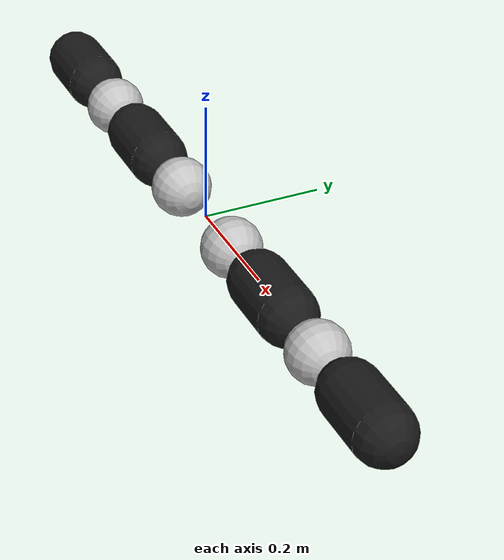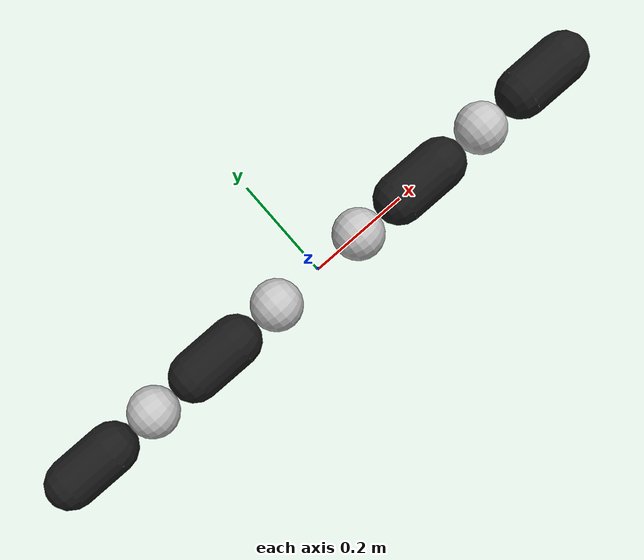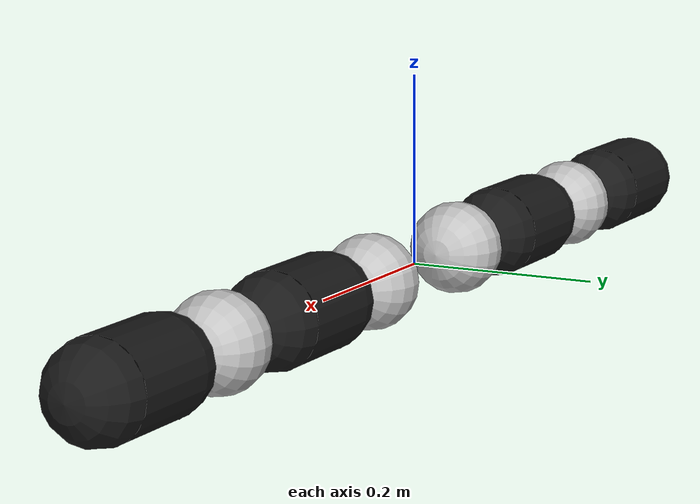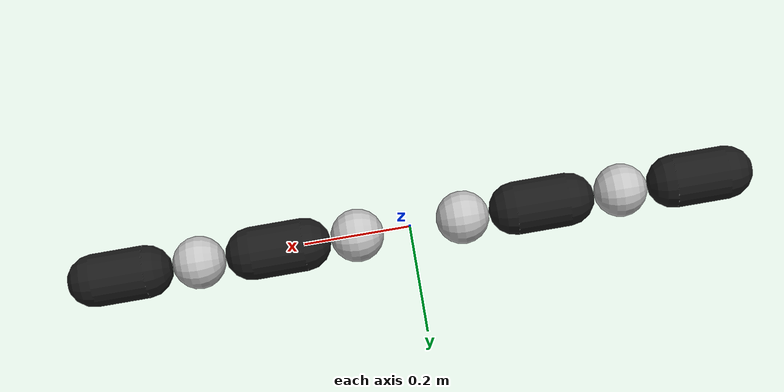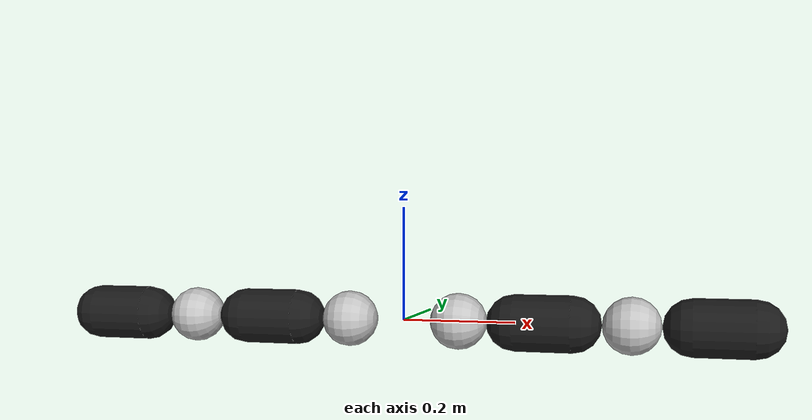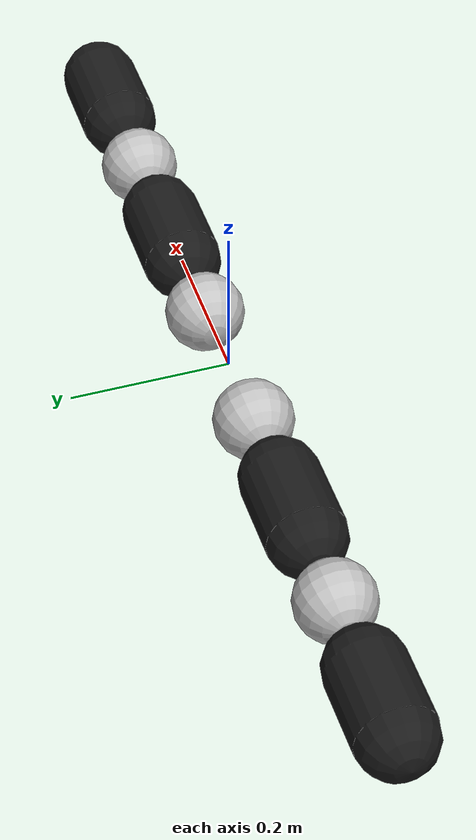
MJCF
<mujoco model="planar_hand">
<!-- Copyright (c) 2023 Boston Dynamics AI Institute LLC. All rights reserved. -->
  <compiler angle="radian" autolimits="true"/>

  <option gravity="0 0 -9.81" timestep="0.01" />

  <asset>
    <material name="object" rgba=".6 0.9 1 1"/>
    <material name="grey" rgba="0.75 .75 .75 1"/>
    <material name="black" rgba="0.1 .1 .1 1"/>
  </asset>

  <default>
    <material specular="0.5" shininess="0.95"/>
    <default class="finger">
      <joint axis="0 1 0" damping="2"/>
      <position kp="15" forcerange="-1000 1000"/>
      <default class="left_shoulder">
        <joint range="-1.57 0"/>
        <position ctrlrange="-1.57 0"/>
      </default>
      <default class="right_shoulder">
        <joint range="0 1.57"/>
        <position ctrlrange="0 1.57"/>
      </default>
      <default class="left_elbow">
        <joint range="-2.4 0"/>
        <position ctrlrange="-2.4 0"/>
      </default>
      <default class="right_elbow">
        <joint range="0 2.4"/>
        <position ctrlrange="0 2.4"/>
      </default>
    </default>
  </default>

  <worldbody>
    <body name="robot_base" pos="0.0 0.0 0.0">
      <geom mass="1.0" pos="0.1 0.0 0.0" quat="0.5 0 0.5 0" size="0.05" type="sphere" material="grey"/>
      <geom mass="1.0" pos="-0.1 0.0 0.0" quat="0.5 0 0.5 0" size="0.05" type="sphere" material="grey"/>
      <body name="body_left_shoulder" pos="0.10 0 0">
        <geom mass="0.5" pos="0.15 0 0" quat="0.5 0 0.5 0" size="0.05 0.05" type="capsule" material="black"/>
        <site pos="0.15 0 0" name="site_left_shoulder"/>
        <geom mass="0.5" pos="0.30 0 0" quat="0.5 0 0.5 0" size="0.05" type="sphere" material="grey"/>
        <joint name="joint_left_shoulder" class="left_shoulder"/>
        <body name="body_left_elbow" pos="0.30 0 0">
          <geom mass="1.0" pos="0.15 0 0" quat="0.5 0 0.5 0" size="0.05 0.05" type="capsule" material="black"/>
          <site pos="0.15 0 0" name="site_left_elbow"/>
          <joint name="joint_left_elbow" class="left_elbow"/>
        </body>
      </body>
      <body name="body_right_shoulder" pos="-0.10 0 0">
        <geom mass="0.5" pos="-0.15 0 0" quat="0.5 0 0.5 0" size="0.05 0.05" type="capsule" material="black"/>
        <site pos="-0.15 0 0" name="site_right_shoulder"/>
        <geom mass="0.5" pos="-0.30 0 0" quat="0.5 0 0.5 0" size="0.05" type="sphere" material="grey"/>
        <joint name="joint_right_shoulder" class="right_shoulder"/>
        <body name="body_right_elbow" pos="-0.30 0 0">
          <geom mass="1.0" pos="-0.15 0 0" quat="0.5 0 0.5 0" size="0.05 0.05" type="capsule" material="black"/>
          <site pos="-0.15 0 0" name="site_right_elbow"/>
          <joint name="joint_right_elbow" class="right_elbow"/>
        </body>
      </body>
    </body>
  </worldbody>

  <keyframe>
    <!-- [object_xytheta arm_joint_angles] -->
    <key name="home" qpos="0 1 0  0 0 0 0" />
  </keyframe>

  <sensor>
    <framepos name="sensor_left_thigh" objtype="site" objname="site_left_shoulder" reftype="site" refname="site_box"/>
    <framepos name="sensor_left_calf" objtype="site" objname="site_left_elbow" reftype="site" refname="site_box"/>
    <framepos name="sensor_right_thigh" objtype="site" objname="site_right_shoulder" reftype="site" refname="site_box"/>
    <framepos name="sensor_right_calf" objtype="site" objname="site_right_elbow" reftype="site" refname="site_box"/>
  </sensor>

  <actuator>
    <position name="actuator_left_thigh" joint="joint_left_shoulder" class="left_shoulder"/>
    <position name="actuator_left_calf" joint="joint_left_elbow" class="left_elbow"/>
    <position name="actuator_right_thigh" joint="joint_right_shoulder" class="right_shoulder"/>
    <position name="actuator_right_calf" joint="joint_right_elbow" class="right_elbow"/>
  </actuator>
</mujoco>
